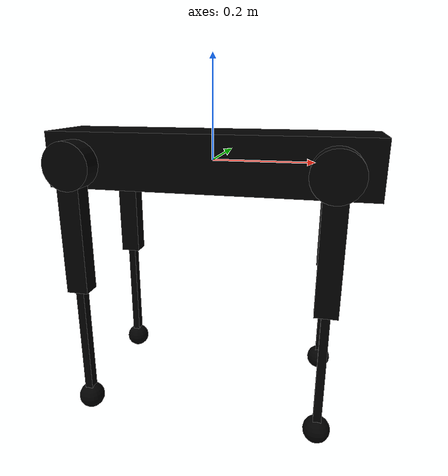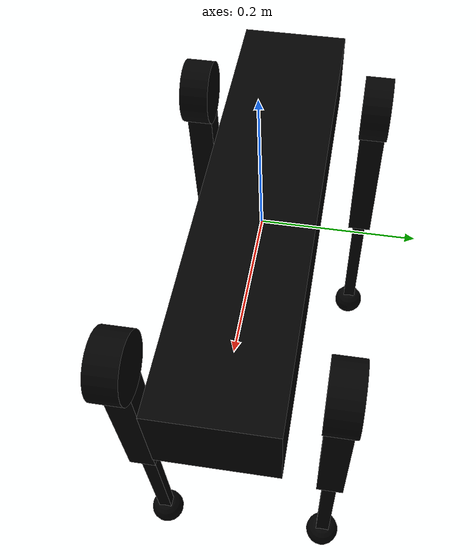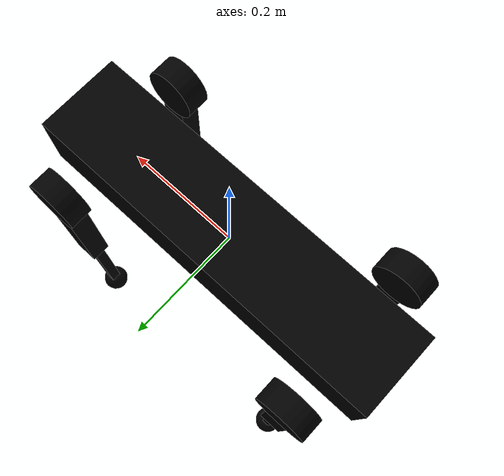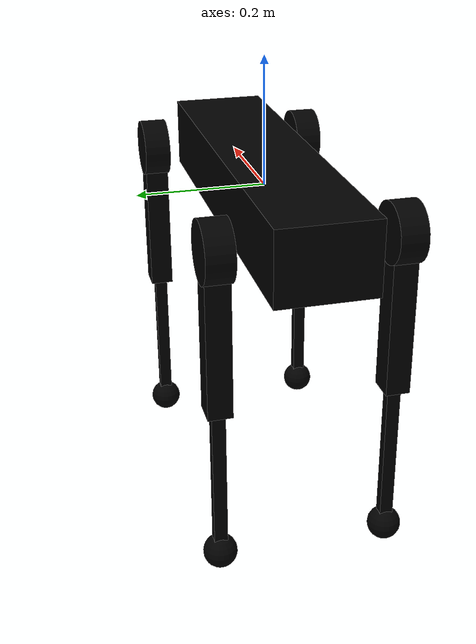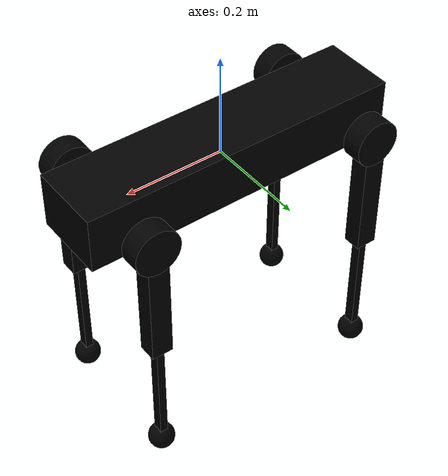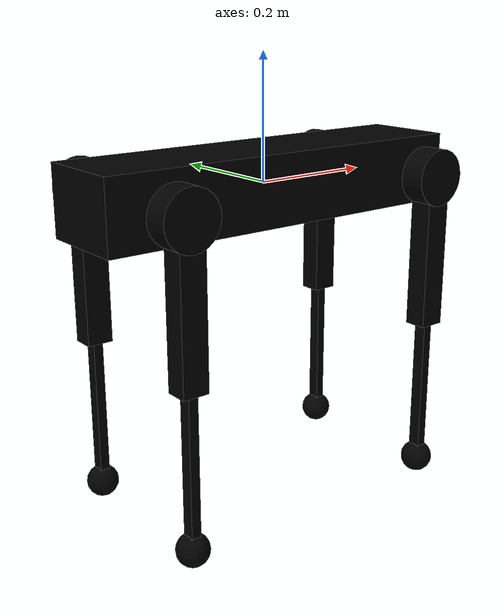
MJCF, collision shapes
<mujoco model="aliengo">
    <compiler angle="radian" meshdir="../meshes/"/>
    <size njmax="500" nconmax="100"/>
    <option integrator="Euler"/>
    <asset>
        <mesh name="trunk" file="trunk.stl"/>
        <mesh name="hip" file="hip.stl"/>
        <mesh name="thigh_mirror" file="thigh_mirror.stl"/>
        <mesh name="calf" file="calf.stl"/>
        <mesh name="thigh" file="thigh.stl"/>
    </asset>
    <worldbody>
        <body name="torso">
            <camera name="egocentric" pos=".25 0 .11" xyaxes="0 -1 0 0 0 1" fovy="90"/>
            <camera name="side_cam" pos="0 -1 0.1" mode="track" xyaxes="1 0 0 0 0 1" fovy="90"/>
            <camera name="back_cam" pos="-1.5 0 0" mode="track" xyaxes="0 -1 0 0 0 1" fovy="90"/>
            <inertial pos="0.008465 0.004045 -0.000763" quat="-2.12791e-05 0.708321 0.00248043 0.705886" mass="9.041"
                      diaginertia="0.174606 0.161174 0.033257"/>
            <geom type="mesh" contype="0" conaffinity="0" group="1" rgba="0 0 0 0.6" mesh="trunk"/>
            <geom size="0.3235 0.075 0.056" type="box" rgba="0 0 0 0"/>
            <site name="torso_sensor_site" group="4" size="0.001 0.001 0.001"/>
            <body name="FR_hip" pos="0.2399 -0.051 0">
                <inertial pos="-0.022191 -0.015144 -1.5e-05" quat="0.0135493 0.706835 -0.0117635 0.707151" mass="1.993"
                          diaginertia="0.00558695 0.00491009 0.00290132"/>
                <joint name="FR_hip_joint" pos="0 0 0" axis="1 0 0" limited="true" range="-1.22173 1.22173"/>
                <geom quat="0 1 0 0" type="mesh" contype="0" conaffinity="0" group="1" rgba="1 0.423529 0.0392157 0.6"
                      mesh="hip"/>
                <geom size="0.046 0.0209" pos="0 -0.083 0" quat="0.707107 0.707107 0 0" type="cylinder"
                      rgba="0 0 0 0"/>
                <body name="FR_thigh" pos="0 -0.083 0">
                    <inertial pos="-0.005607 0.003877 -0.048199" quat="0.694544 -0.0335669 -0.031246 0.717987"
                              mass="0.639" diaginertia="0.0058474 0.00571186 0.000324584"/>
                    <joint name="FR_thigh_joint" pos="0 0 0" axis="0 1 0"/>
                    <geom type="mesh" contype="0" conaffinity="0" group="1" rgba="1 0.423529 0.0392157 0.6"
                          mesh="thigh_mirror"/>
                    <geom size="0.125 0.0187 0.0215" pos="0 0 -0.125" quat="0.707107 0 0.707107 0" type="box"
                          rgba="0 0 0 0"/>
                    <body name="FR_calf" pos="0 0 -0.25">
                        <inertial pos="0.00215606 4.88427e-05 -0.166671" quat="0.707462 0.00517582 0.00535172 0.706712"
                                  mass="0.267" diaginertia="0.00690975 0.00689712 5.4885e-05"/>
                        <joint name="FR_calf_joint" pos="0 0 0" axis="0 1 0" limited="true" range="-2.77507 -0.645772"/>
                        <geom type="mesh" contype="0" conaffinity="0" group="1" rgba="1 0.423529 0.0392157 0.6"
                              mesh="calf"/>
                        <geom size="0.125 0.0104 0.008" pos="0 0 -0.125" quat="0.707107 0 0.707107 0" type="box"
                              rgba="0 0 0 0"/>
                        <body name="FR_foot" pos="0 0 -0.25">
                            <geom size="0.0165" pos="0 0 0" contype="0" conaffinity="0" group="1"
                                  rgba="0 0 0 0"/>
                            <geom size="0.0265" pos="0 0 0" rgba="0 0 0 0"/>
                        </body>
                    </body>
                </body>
            </body>
            <body name="FL_hip" pos="0.2399 0.051 0">
                <inertial pos="-0.022191 0.015144 -1.5e-05" quat="-0.0135493 0.706835 0.0117635 0.707151" mass="1.993"
                          diaginertia="0.00558695 0.00491009 0.00290132"/>
                <joint name="FL_hip_joint" pos="0 0 0" axis="1 0 0" limited="true" range="-1.22173 1.22173"/>
                <geom type="mesh" contype="0" conaffinity="0" group="1" rgba="1 0.423529 0.0392157 0.6" mesh="hip"/>
                <geom size="0.046 0.0209" pos="0 0.083 0" quat="0.707107 0.707107 0 0" type="cylinder"
                      rgba="0 0 0 0"/>
                <body name="FL_thigh" pos="0 0.083 0">
                    <inertial pos="-0.005607 -0.003877 -0.048199" quat="0.717987 -0.031246 -0.0335669 0.694544"
                              mass="0.639"
                              diaginertia="0.0058474 0.00571186 0.000324584"/>
                    <joint name="FL_thigh_joint" pos="0 0 0" axis="0 1 0"/>
                    <geom type="mesh" contype="0" conaffinity="0" group="1" rgba="1 0.423529 0.0392157 0.6"
                          mesh="thigh"/>
                    <geom size="0.125 0.0187 0.0215" pos="0 0 -0.125" quat="0.707107 0 0.707107 0" type="box"
                          rgba="0 0 0 0"/>
                    <body name="FL_calf" pos="0 0 -0.25">
                        <inertial pos="0.00215606 4.88427e-05 -0.166671" quat="0.707462 0.00517582 0.00535172 0.706712"
                                  mass="0.267" diaginertia="0.00690975 0.00689712 5.4885e-05"/>
                        <joint name="FL_calf_joint" pos="0 0 0" axis="0 1 0" limited="true" range="-2.77507 -0.645772"/>
                        <geom type="mesh" contype="0" conaffinity="0" group="1" rgba="1 0.423529 0.0392157 0.6"
                              mesh="calf"/>
                        <geom size="0.125 0.0104 0.008" pos="0 0 -0.125" quat="0.707107 0 0.707107 0" type="box"
                              rgba="0 0 0 0"/>
                        <body name="FL_foot" pos="0 0 -0.25">
                            <geom size="0.0165" pos="0 0 0" contype="0" conaffinity="0" group="1"
                                  rgba="0 0 0 0"/>
                            <geom size="0.0265" pos="0 0 0" rgba="0 0 0 0"/>
                        </body>
                    </body>
                </body>
            </body>
            <body name="RR_hip" pos="-0.2399 -0.051 0">
                <inertial pos="0.022191 -0.015144 -1.5e-05" quat="-0.0117635 0.707151 0.0135493 0.706835" mass="1.993"
                          diaginertia="0.00558695 0.00491009 0.00290132"/>
                <joint name="RR_hip_joint" pos="0 0 0" axis="1 0 0" limited="true" range="-1.22173 1.22173"/>
                <geom quat="0 0 0 -1" type="mesh" contype="0" conaffinity="0" group="1" rgba="1 0.423529 0.0392157 0.6"
                      mesh="hip"/>
                <geom size="0.046 0.0209" pos="0 -0.083 0" quat="0.707107 0.707107 0 0" type="cylinder"
                      rgba="0 0 0 0"/>
                <body name="RR_thigh" pos="0 -0.083 0">
                    <inertial pos="-0.005607 0.003877 -0.048199" quat="0.694544 -0.0335669 -0.031246 0.717987"
                              mass="0.639"
                              diaginertia="0.0058474 0.00571186 0.000324584"/>
                    <joint name="RR_thigh_joint" pos="0 0 0" axis="0 1 0"/>
                    <geom type="mesh" contype="0" conaffinity="0" group="1" rgba="1 0.423529 0.0392157 0.6"
                          mesh="thigh_mirror"/>
                    <geom size="0.125 0.0187 0.0215" pos="0 0 -0.125" quat="0.707107 0 0.707107 0" type="box"
                          rgba="0 0 0 0"/>
                    <body name="RR_calf" pos="0 0 -0.25">
                        <inertial pos="0.00215606 4.88427e-05 -0.166671" quat="0.707462 0.00517582 0.00535172 0.706712"
                                  mass="0.267" diaginertia="0.00690975 0.00689712 5.4885e-05"/>
                        <joint name="RR_calf_joint" pos="0 0 0" axis="0 1 0" limited="true" range="-2.77507 -0.645772"/>
                        <geom type="mesh" contype="0" conaffinity="0" group="1" rgba="1 0.423529 0.0392157 0.6"
                              mesh="calf"/>
                        <geom size="0.125 0.0104 0.008" pos="0 0 -0.125" quat="0.707107 0 0.707107 0" type="box"
                              rgba="0 0 0 0"/>
                        <body name="RR_foot" pos="0 0 -0.25">
                            <geom size="0.0165" pos="0 0 0" contype="0" conaffinity="0" group="1"
                                  rgba="0 0 0 0"/>
                            <geom size="0.0265" pos="0 0 0" rgba="0 0 0 0"/>
                        </body>
                    </body>
                </body>
            </body>
            <body name="RL_hip" pos="-0.2399 0.051 0">
                <inertial pos="0.022191 0.015144 -1.5e-05" quat="0.0117635 0.707151 -0.0135493 0.706835" mass="1.993"
                          diaginertia="0.00558695 0.00491009 0.00290132"/>
                <joint name="RL_hip_joint" pos="0 0 0" axis="1 0 0" limited="true" range="-1.22173 1.22173"/>
                <geom quat="0 0 1 0" type="mesh" contype="0" conaffinity="0" group="1" rgba="1 0.423529 0.0392157 0.6"
                      mesh="hip"/>
                <geom size="0.046 0.0209" pos="0 0.083 0" quat="0.707107 0.707107 0 0" type="cylinder"
                      rgba="0 0 0 0"/>
                <body name="RL_thigh" pos="0 0.083 0">
                    <inertial pos="-0.005607 -0.003877 -0.048199" quat="0.717987 -0.031246 -0.0335669 0.694544"
                              mass="0.639" diaginertia="0.0058474 0.00571186 0.000324584"/>
                    <joint name="RL_thigh_joint" pos="0 0 0" axis="0 1 0"/>
                    <geom type="mesh" contype="0" conaffinity="0" group="1" rgba="1 0.423529 0.0392157 0.6"
                          mesh="thigh"/>
                    <geom size="0.125 0.0187 0.0215" pos="0 0 -0.125" quat="0.707107 0 0.707107 0" type="box"
                          rgba="0 0 0 0"/>
                    <body name="RL_calf" pos="0 0 -0.25">
                        <inertial pos="0.00215606 4.88427e-05 -0.166671" quat="0.707462 0.00517582 0.00535172 0.706712"
                                  mass="0.267" diaginertia="0.00690975 0.00689712 5.4885e-05"/>
                        <joint name="RL_calf_joint" pos="0 0 0" axis="0 1 0" limited="true" range="-2.77507 -0.645772"/>
                        <geom type="mesh" contype="0" conaffinity="0" group="1" rgba="1 0.423529 0.0392157 0.6"
                              mesh="calf"/>
                        <geom size="0.125 0.0104 0.008" pos="0 0 -0.125" quat="0.707107 0 0.707107 0" type="box"
                              rgba="0 0 0 0"/>
                        <body name="RL_foot" pos="0 0 -0.25">
                            <geom size="0.0165" pos="0 0 0" contype="0" conaffinity="0" group="1"
                                  rgba="0 0 0 0"/>
                            <geom size="0.0265" pos="0 0 0" rgba="0 0 0 0"/>
                        </body>
                    </body>
                </body>
            </body>
        </body>
    </worldbody>
    <actuator>
        <motor name="FR_hip_joint" joint="FR_hip_joint"/>
        <motor name="FR_thigh_joint" joint="FR_thigh_joint"/>
        <motor name="FR_calf_joint" joint="FR_calf_joint"/>
        <motor name="FL_hip_joint" joint="FL_hip_joint"/>
        <motor name="FL_thigh_joint" joint="FL_thigh_joint"/>
        <motor name="FL_calf_joint" joint="FL_calf_joint"/>
        <motor name="RR_hip_joint" joint="RR_hip_joint"/>
        <motor name="RR_thigh_joint" joint="RR_thigh_joint"/>
        <motor name="RR_calf_joint" joint="RR_calf_joint"/>
        <motor name="RL_hip_joint" joint="RL_hip_joint"/>
        <motor name="RL_thigh_joint" joint="RL_thigh_joint"/>
        <motor name="RL_calf_joint" joint="RL_calf_joint"/>
    </actuator>
    <sensor>
        <accelerometer name="torso_accm" site="torso_sensor_site"/>
        <gyro name="torso_gyro" site="torso_sensor_site"/>
        <velocimeter name="torso_velm" site="torso_sensor_site"/>
    </sensor>
</mujoco>
